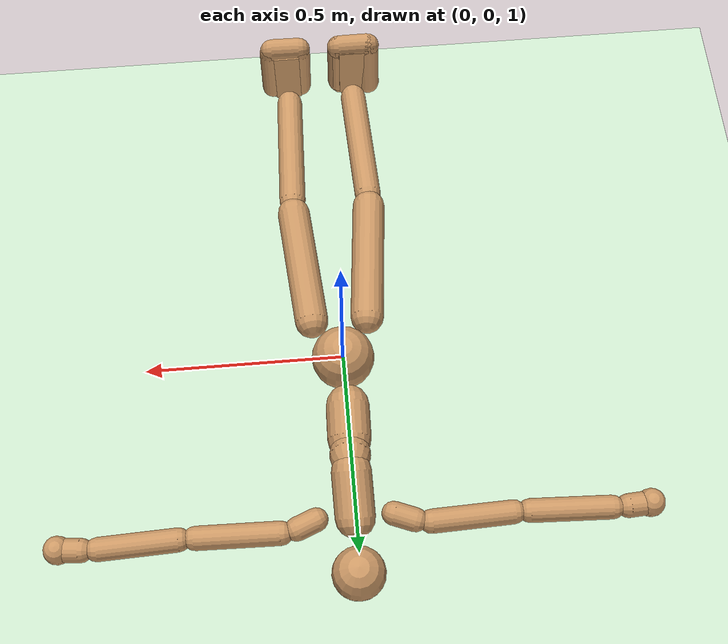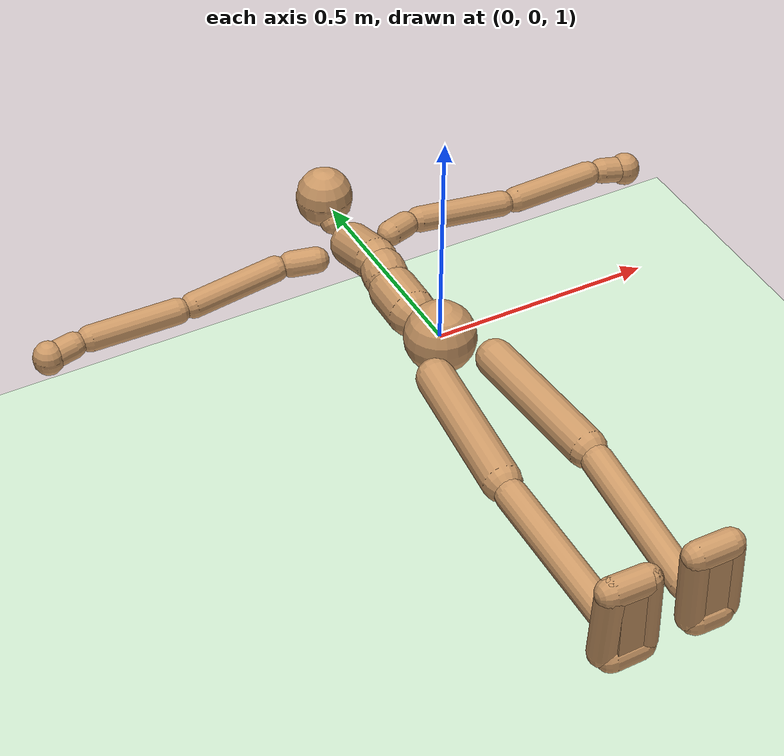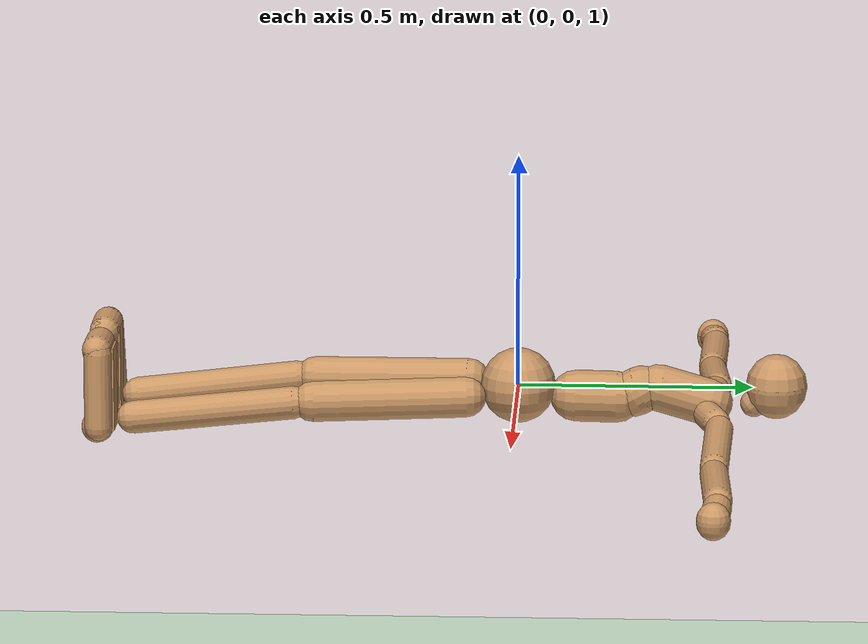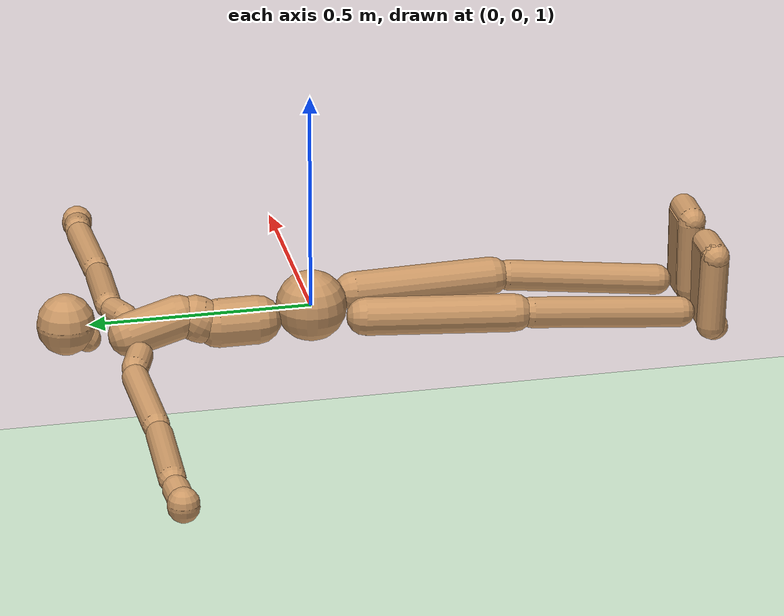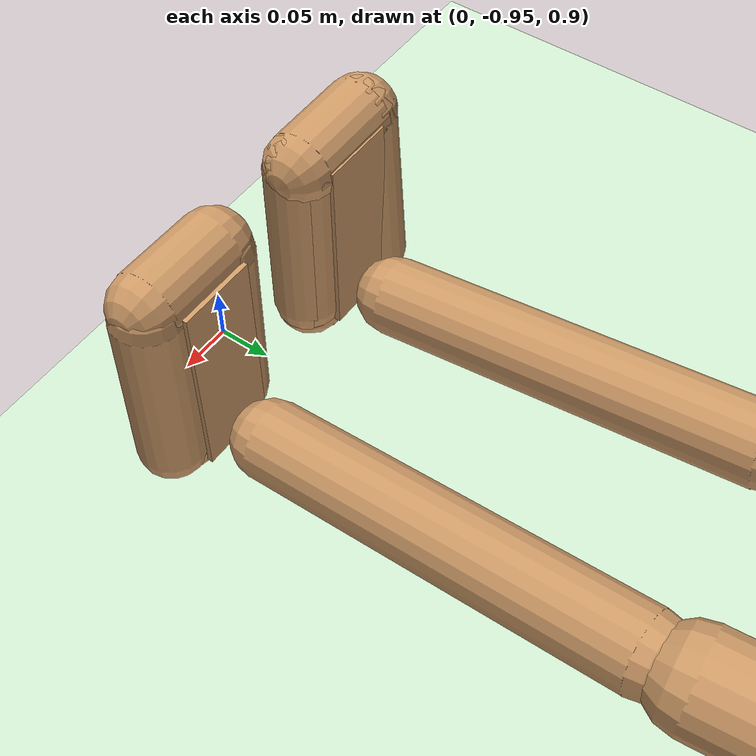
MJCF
<mujoco model="humanoid">
  <compiler angle="degree" inertiafromgeom="true" coordinate="global"/>
  <include file="./common/materials.xml"/>
  <visual>
    <headlight ambient=".4 .4 .4" diffuse=".8 .8 .8" specular="0.1 0.1 0.1"/>
    <map znear=".01"/>
    <quality shadowsize="2048"/>
  </visual>
  <default>
    <joint damping="0.0" armature="0.01" stiffness="0.0" limited="true"/>
    <geom conaffinity="7" condim="1" contype="7" margin="0.001" material="self" rgba="0.8 0.6 .4 1"/>
  </default>
  <statistic extent="3" center="0 0 1"/>
  <option timestep="0.00222222222">
    <flag contact="disable"/>
  </option>
  <size njmax="1000"/>
  <asset>
    <texture type="skybox" file="./common/sky1.png" gridsize="3 4" gridlayout=".U..LFRB.D.." width="8192" height="8192"/>
    <texture builtin="flat" height="1278" mark="cross" markrgb="1 1 1" name="texgeom" random="0.01" rgb1=".8 .6 .4" rgb2=".8 .6 .4" type="cube" width="127"/>
    <mesh file="./geom/Pelvis.stl"/>
    <mesh file="./geom/L_Hip.stl"/>
    <mesh file="./geom/R_Hip.stl"/>
    <mesh file="./geom/Torso.stl"/>
    <mesh file="./geom/L_Knee.stl"/>
    <mesh file="./geom/R_Knee.stl"/>
    <mesh file="./geom/Spine.stl"/>
    <mesh file="./geom/L_Ankle.stl"/>
    <mesh file="./geom/R_Ankle.stl"/>
    <mesh file="./geom/Chest.stl"/>
    <mesh file="./geom/L_Toe.stl"/>
    <mesh file="./geom/R_Toe.stl"/>
    <mesh file="./geom/Neck.stl"/>
    <mesh file="./geom/L_Thorax.stl"/>
    <mesh file="./geom/R_Thorax.stl"/>
    <mesh file="./geom/Head.stl"/>
    <mesh file="./geom/L_Shoulder.stl"/>
    <mesh file="./geom/R_Shoulder.stl"/>
    <mesh file="./geom/L_Elbow.stl"/>
    <mesh file="./geom/R_Elbow.stl"/>
    <mesh file="./geom/L_Wrist.stl"/>
    <mesh file="./geom/R_Wrist.stl"/>
    <mesh file="./geom/L_Hand.stl"/>
    <mesh file="./geom/R_Hand.stl"/>
  </asset>
  <worldbody>
    <light cutoff="100" diffuse="1 1 1" dir="-0 0 -1.3" directional="true" exponent="1" pos="0 0 1.3" specular=".1 .1 .1"/>
    <geom condim="3" friction="1. .1 .1" material="grid" name="floor" pos="0 0 0" rgba=".8 .9 .8 1" size="100 100 .2" type="plane"/>
    <body name="Pelvis" pos="0.0000 0.0000 1.0000" user="-0.0001 -0.0251 0.9883">
      <joint name="Pelvis" pos="0.0000 0.0000 1.0000" limited="false" type="free" armature="0" damping="0" stiffness="0"/>
      <geom size="0.0800" type="sphere" pos="0.0000 0.0000 1.0000"/>
      <body name="L_Hip" pos="0.0714 -0.0896 0.9920" user="0.1020 -0.4538 0.9853">
        <joint name="L_Hip_z" type="hinge" pos="0.0714 -0.0896 0.9920" axis="0.0000 0.0000 1.0000" range="-180.0000 180.0000"/>
        <joint name="L_Hip_y" type="hinge" pos="0.0714 -0.0896 0.9920" axis="0.0000 1.0000 0.0000" range="-180.0000 180.0000"/>
        <joint name="L_Hip_x" type="hinge" pos="0.0714 -0.0896 0.9920" axis="1.0000 0.0000 0.0000" range="-180.0000 180.0000"/>
        <geom size="0.0430" type="capsule" fromto="0.0730 -0.1095 0.9916 0.1004 -0.4339 0.9856" contype="0" conaffinity="1"/>
        <body name="L_Knee" pos="0.1020 -0.4538 0.9853" user="0.0905 -0.8371 0.9418">
          <joint name="L_Knee_z" type="hinge" pos="0.1020 -0.4538 0.9853" axis="0.0000 0.0000 1.0000" range="-180.0000 180.0000"/>
          <joint name="L_Knee_y" type="hinge" pos="0.1020 -0.4538 0.9853" axis="0.0000 1.0000 0.0000" range="-180.0000 180.0000"/>
          <joint name="L_Knee_x" type="hinge" pos="0.1020 -0.4538 0.9853" axis="1.0000 0.0000 0.0000" range="-180.0000 180.0000"/>
          <geom size="0.0350" type="capsule" fromto="0.1014 -0.4737 0.9830 0.0911 -0.8173 0.9440" contype="0" conaffinity="1"/>
          <body name="L_Ankle" pos="0.0905 -0.8371 0.9418" user="0.1138 -0.8918 1.0561">
            <joint name="L_Ankle_z" type="hinge" pos="0.0905 -0.8371 0.9418" axis="0.0000 0.0000 1.0000" range="-180.0000 180.0000"/>
            <joint name="L_Ankle_y" type="hinge" pos="0.0905 -0.8371 0.9418" axis="0.0000 1.0000 0.0000" range="-180.0000 180.0000"/>
            <joint name="L_Ankle_x" type="hinge" pos="0.0905 -0.8371 0.9418" axis="1.0000 0.0000 0.0000" range="-180.0000 180.0000"/>
            <geom pos="0.0905 -0.8851 1.0118" size="0.0350 0.0900 0.0300" quat="0.7071 -0.7071 -0.0000 -0.0000" type="box" contype="0" conaffinity="1"/>
            <body name="L_Toe" pos="0.1138 -0.8918 1.0561" user="0.1138 -0.8918 1.0561">
              <joint name="L_Toe_z" type="hinge" pos="0.1138 -0.8918 1.0561" axis="0.0000 0.0000 1.0000" range="-180.0000 180.0000"/>
              <joint name="L_Toe_y" type="hinge" pos="0.1138 -0.8918 1.0561" axis="0.0000 1.0000 0.0000" range="-180.0000 180.0000"/>
              <joint name="L_Toe_x" type="hinge" pos="0.1138 -0.8918 1.0561" axis="1.0000 0.0000 0.0000" range="-180.0000 180.0000"/>
              <geom size="0.0310" type="capsule" fromto="0.0541 -0.8898 1.0996 0.1295 -0.8898 1.1006" contype="0" conaffinity="1"/>
            </body>
            <body name="L_Toe_1" pos="0.1138 -0.8918 1.0561" user="0.1138 -0.8918 1.0561">
              <joint name="L_Toe_1_z" type="hinge" pos="0.1138 -0.8918 1.0561" axis="0.0000 0.0000 1.0000" range="-180.0000 180.0000"/>
              <joint name="L_Toe_1_y" type="hinge" pos="0.1138 -0.8918 1.0561" axis="0.0000 1.0000 0.0000" range="-180.0000 180.0000"/>
              <joint name="L_Toe_1_x" type="hinge" pos="0.1138 -0.8918 1.0561" axis="1.0000 0.0000 0.0000" range="-180.0000 180.0000"/>
              <geom size="0.0300" type="capsule" fromto="0.1327 -0.8878 1.0945 0.1349 -0.8878 0.9337" contype="0" conaffinity="1"/>
            </body>
            <body name="L_Toe_2" pos="0.1138 -0.8918 1.0561" user="0.1138 -0.8918 1.0561">
              <joint name="L_Toe_2_z" type="hinge" pos="0.1138 -0.8918 1.0561" axis="0.0000 0.0000 1.0000" range="-180.0000 180.0000"/>
              <joint name="L_Toe_2_y" type="hinge" pos="0.1138 -0.8918 1.0561" axis="0.0000 1.0000 0.0000" range="-180.0000 180.0000"/>
              <joint name="L_Toe_2_x" type="hinge" pos="0.1138 -0.8918 1.0561" axis="1.0000 0.0000 0.0000" range="-180.0000 180.0000"/>
              <geom size="0.0310" type="capsule" fromto="0.0572 -0.8878 0.9337 0.0544 -0.8878 1.0945" contype="0" conaffinity="1"/>
            </body>
            <body name="L_Toe_3" pos="0.1138 -0.8918 1.0561" user="0.1138 -0.8918 1.0561">
              <joint name="L_Toe_3_z" type="hinge" pos="0.1138 -0.8918 1.0561" axis="0.0000 0.0000 1.0000" range="-180.0000 180.0000"/>
              <joint name="L_Toe_3_y" type="hinge" pos="0.1138 -0.8918 1.0561" axis="0.0000 1.0000 0.0000" range="-180.0000 180.0000"/>
              <joint name="L_Toe_3_x" type="hinge" pos="0.1138 -0.8918 1.0561" axis="1.0000 0.0000 0.0000" range="-180.0000 180.0000"/>
              <geom size="0.0340" type="capsule" fromto="0.1172 -0.8918 0.9287 0.0664 -0.8918 0.9275" contype="0" conaffinity="1"/>
            </body>
          </body>
        </body>
      </body>
      <body name="R_Hip" pos="-0.0690 -0.0890 0.9952" user="-0.1052 -0.4596 0.9860">
        <joint name="R_Hip_z" type="hinge" pos="-0.0690 -0.0890 0.9952" axis="0.0000 0.0000 1.0000" range="-180.0000 180.0000"/>
        <joint name="R_Hip_y" type="hinge" pos="-0.0690 -0.0890 0.9952" axis="0.0000 1.0000 0.0000" range="-180.0000 180.0000"/>
        <joint name="R_Hip_x" type="hinge" pos="-0.0690 -0.0890 0.9952" axis="1.0000 0.0000 0.0000" range="-180.0000 180.0000"/>
        <geom size="0.0430" type="capsule" fromto="-0.0710 -0.1089 0.9947 -0.1032 -0.4397 0.9865" contype="0" conaffinity="1"/>
        <body name="R_Knee" pos="-0.1052 -0.4596 0.9860" user="-0.0911 -0.8432 0.9441">
          <joint name="R_Knee_z" type="hinge" pos="-0.1052 -0.4596 0.9860" axis="0.0000 0.0000 1.0000" range="-180.0000 180.0000"/>
          <joint name="R_Knee_y" type="hinge" pos="-0.1052 -0.4596 0.9860" axis="0.0000 1.0000 0.0000" range="-180.0000 180.0000"/>
          <joint name="R_Knee_x" type="hinge" pos="-0.1052 -0.4596 0.9860" axis="1.0000 0.0000 0.0000" range="-180.0000 180.0000"/>
          <geom size="0.0350" type="capsule" fromto="-0.1044 -0.4795 0.9838 -0.0919 -0.8234 0.9463" contype="0" conaffinity="1"/>
          <body name="R_Ankle" pos="-0.0911 -0.8432 0.9441" user="-0.1132 -0.8897 1.0620">
            <joint name="R_Ankle_z" type="hinge" pos="-0.0911 -0.8432 0.9441" axis="0.0000 0.0000 1.0000" range="-180.0000 180.0000"/>
            <joint name="R_Ankle_y" type="hinge" pos="-0.0911 -0.8432 0.9441" axis="0.0000 1.0000 0.0000" range="-180.0000 180.0000"/>
            <joint name="R_Ankle_x" type="hinge" pos="-0.0911 -0.8432 0.9441" axis="1.0000 0.0000 0.0000" range="-180.0000 180.0000"/>
            <geom pos="-0.0911 -0.8892 1.0118" size="0.0350 0.0900 0.0300" quat="0.7071 -0.7071 0.0000 0.0000" type="box" contype="0" conaffinity="1"/>
            <body name="R_Toe" pos="-0.1132 -0.8897 1.0620" user="-0.1132 -0.8897 1.0620">
              <joint name="R_Toe_z" type="hinge" pos="-0.1132 -0.8897 1.0620" axis="0.0000 0.0000 1.0000" range="-180.0000 180.0000"/>
              <joint name="R_Toe_y" type="hinge" pos="-0.1132 -0.8897 1.0620" axis="0.0000 1.0000 0.0000" range="-180.0000 180.0000"/>
              <joint name="R_Toe_x" type="hinge" pos="-0.1132 -0.8897 1.0620" axis="1.0000 0.0000 0.0000" range="-180.0000 180.0000"/>
              <geom size="0.0320" type="capsule" fromto="-0.0570 -0.8917 1.0935 -0.1374 -0.8917 1.0945" contype="0" conaffinity="1"/>
            </body>
            <body name="R_Toe_1" pos="-0.1132 -0.8897 1.0620" user="-0.1132 -0.8897 1.0620">
              <joint name="R_Toe_1_z" type="hinge" pos="-0.1132 -0.8897 1.0620" axis="0.0000 0.0000 1.0000" range="-180.0000 180.0000"/>
              <joint name="R_Toe_1_y" type="hinge" pos="-0.1132 -0.8897 1.0620" axis="0.0000 1.0000 0.0000" range="-180.0000 180.0000"/>
              <joint name="R_Toe_1_x" type="hinge" pos="-0.1132 -0.8897 1.0620" axis="1.0000 0.0000 0.0000" range="-180.0000 180.0000"/>
              <geom size="0.0320" type="capsule" fromto="-0.1353 -0.8912 1.0945 -0.1391 -0.8842 0.9295" contype="0" conaffinity="1"/>
            </body>
            <body name="R_Toe_2" pos="-0.1132 -0.8897 1.0620" user="-0.1132 -0.8897 1.0620">
              <joint name="R_Toe_2_z" type="hinge" pos="-0.1132 -0.8897 1.0620" axis="0.0000 0.0000 1.0000" range="-180.0000 180.0000"/>
              <joint name="R_Toe_2_y" type="hinge" pos="-0.1132 -0.8897 1.0620" axis="0.0000 1.0000 0.0000" range="-180.0000 180.0000"/>
              <joint name="R_Toe_2_x" type="hinge" pos="-0.1132 -0.8897 1.0620" axis="1.0000 0.0000 0.0000" range="-180.0000 180.0000"/>
              <geom size="0.0300" type="capsule" fromto="-0.0558 -0.8937 1.0942 -0.0546 -0.8937 0.9338" contype="0" conaffinity="1"/>
            </body>
            <body name="R_Toe_3" pos="-0.1132 -0.8897 1.0620" user="-0.1132 -0.8897 1.0620">
              <joint name="R_Toe_3_z" type="hinge" pos="-0.1132 -0.8897 1.0620" axis="0.0000 0.0000 1.0000" range="-180.0000 180.0000"/>
              <joint name="R_Toe_3_y" type="hinge" pos="-0.1132 -0.8897 1.0620" axis="0.0000 1.0000 0.0000" range="-180.0000 180.0000"/>
              <joint name="R_Toe_3_x" type="hinge" pos="-0.1132 -0.8897 1.0620" axis="1.0000 0.0000 0.0000" range="-180.0000 180.0000"/>
              <geom size="0.0320" type="capsule" fromto="-0.1272 -0.8957 0.9204 -0.0614 -0.8957 0.9236" contype="0" conaffinity="1"/>
            </body>
          </body>
        </body>
      </body>
      <body name="Torso" pos="-0.0025 0.1033 0.9778" user="0.0011 0.2309 0.9761">
        <joint name="Torso_z" type="hinge" pos="-0.0025 0.1033 0.9778" axis="0.0000 0.0000 1.0000" range="-180.0000 180.0000"/>
        <joint name="Torso_y" type="hinge" pos="-0.0025 0.1033 0.9778" axis="0.0000 1.0000 0.0000" range="-180.0000 180.0000"/>
        <joint name="Torso_x" type="hinge" pos="-0.0025 0.1033 0.9778" axis="1.0000 0.0000 0.0000" range="-180.0000 180.0000"/>
        <geom size="0.0550" type="capsule" fromto="-0.0019 0.1232 0.9775 0.0005 0.2109 0.9764" contype="0" conaffinity="1"/>
        <body name="Spine" pos="0.0011 0.2309 0.9761" user="0.0031 0.2800 1.0040">
          <joint name="Spine_z" type="hinge" pos="0.0011 0.2309 0.9761" axis="0.0000 0.0000 1.0000" range="-180.0000 180.0000"/>
          <joint name="Spine_y" type="hinge" pos="0.0011 0.2309 0.9761" axis="0.0000 1.0000 0.0000" range="-180.0000 180.0000"/>
          <joint name="Spine_x" type="hinge" pos="0.0011 0.2309 0.9761" axis="1.0000 0.0000 0.0000" range="-180.0000 180.0000"/>
          <geom size="0.0510" type="capsule" fromto="0.0018 0.2483 0.9860 0.0024 0.2626 0.9941" contype="0" conaffinity="1"/>
          <body name="Chest" pos="0.0031 0.2800 1.0040" user="0.0019 0.4272 0.9612">
            <joint name="Chest_z" type="hinge" pos="0.0031 0.2800 1.0040" axis="0.0000 0.0000 1.0000" range="-180.0000 180.0000"/>
            <joint name="Chest_y" type="hinge" pos="0.0031 0.2800 1.0040" axis="0.0000 1.0000 0.0000" range="-180.0000 180.0000"/>
            <joint name="Chest_x" type="hinge" pos="0.0031 0.2800 1.0040" axis="1.0000 0.0000 0.0000" range="-180.0000 180.0000"/>
            <geom size="0.0500" type="capsule" fromto="0.0029 0.2992 0.9984 0.0020 0.4080 0.9667" contype="0" conaffinity="1"/>
            <body name="Neck" pos="0.0011 0.4882 0.9542" user="0.0047 0.5506 1.0044">
              <joint name="Neck_z" type="hinge" pos="0.0011 0.4882 0.9542" axis="0.0000 0.0000 1.0000" range="-180.0000 180.0000"/>
              <joint name="Neck_y" type="hinge" pos="0.0011 0.4882 0.9542" axis="0.0000 1.0000 0.0000" range="-180.0000 180.0000"/>
              <joint name="Neck_x" type="hinge" pos="0.0011 0.4882 0.9542" axis="1.0000 0.0000 0.0000" range="-180.0000 180.0000"/>
              <geom size="0.0300" type="capsule" fromto="0.0020 0.5038 0.9667 0.0038 0.5350 0.9919" contype="0" conaffinity="1"/>
              <body name="Head" pos="0.0047 0.5506 1.0044" user="0.0047 0.5506 1.0044">
                <joint name="Head_z" type="hinge" pos="0.0047 0.5506 1.0044" axis="0.0000 0.0000 1.0000" range="-180.0000 180.0000"/>
                <joint name="Head_y" type="hinge" pos="0.0047 0.5506 1.0044" axis="0.0000 1.0000 0.0000" range="-180.0000 180.0000"/>
                <joint name="Head_x" type="hinge" pos="0.0047 0.5506 1.0044" axis="1.0000 0.0000 0.0000" range="-180.0000 180.0000"/>
                <geom size="0.0650" type="capsule" fromto="0.0047 0.5506 1.0084 0.0047 0.5506 1.0004" contype="0" conaffinity="1"/>
              </body>
            </body>
            <body name="L_Thorax" pos="0.0784 0.3978 0.9671" user="0.1637 0.4295 0.9598">
              <joint name="L_Thorax_z" type="hinge" pos="0.0784 0.3978 0.9671" axis="0.0000 0.0000 1.0000" range="-180.0000 180.0000"/>
              <joint name="L_Thorax_y" type="hinge" pos="0.0784 0.3978 0.9671" axis="0.0000 1.0000 0.0000" range="-180.0000 180.0000"/>
              <joint name="L_Thorax_x" type="hinge" pos="0.0784 0.3978 0.9671" axis="1.0000 0.0000 0.0000" range="-180.0000 180.0000"/>
              <geom size="0.0300" type="capsule" fromto="0.0971 0.4047 0.9655 0.1450 0.4226 0.9614" contype="0" conaffinity="1"/>
              <body name="L_Shoulder" pos="0.1637 0.4295 0.9598" user="0.4150 0.4175 0.9323">
                <joint name="L_Shoulder_z" type="hinge" pos="0.1637 0.4295 0.9598" axis="0.0000 0.0000 1.0000" range="-180.0000 180.0000"/>
                <joint name="L_Shoulder_y" type="hinge" pos="0.1637 0.4295 0.9598" axis="0.0000 1.0000 0.0000" range="-180.0000 180.0000"/>
                <joint name="L_Shoulder_x" type="hinge" pos="0.1637 0.4295 0.9598" axis="1.0000 0.0000 0.0000" range="-180.0000 180.0000"/>
                <geom size="0.0300" type="capsule" fromto="0.1836 0.4286 0.9576 0.3951 0.4185 0.9345" contype="0" conaffinity="1"/>
                <body name="L_Elbow" pos="0.4150 0.4175 0.9323" user="0.6530 0.4265 0.9323">
                  <joint name="L_Elbow_z" type="hinge" pos="0.4150 0.4175 0.9323" axis="0.0000 0.0000 1.0000" range="-180.0000 180.0000"/>
                  <joint name="L_Elbow_y" type="hinge" pos="0.4150 0.4175 0.9323" axis="0.0000 1.0000 0.0000" range="-180.0000 180.0000"/>
                  <joint name="L_Elbow_x" type="hinge" pos="0.4150 0.4175 0.9323" axis="1.0000 0.0000 0.0000" range="-180.0000 180.0000"/>
                  <geom size="0.0300" type="capsule" fromto="0.4349 0.4183 0.9323 0.6330 0.4258 0.9323" contype="0" conaffinity="1"/>
                  <body name="L_Wrist" pos="0.6530 0.4265 0.9323" user="0.7326 0.4169 0.9191">
                    <joint name="L_Wrist_z" type="hinge" pos="0.6530 0.4265 0.9323" axis="0.0000 0.0000 1.0000" range="-180.0000 180.0000"/>
                    <joint name="L_Wrist_y" type="hinge" pos="0.6530 0.4265 0.9323" axis="0.0000 1.0000 0.0000" range="-180.0000 180.0000"/>
                    <joint name="L_Wrist_x" type="hinge" pos="0.6530 0.4265 0.9323" axis="1.0000 0.0000 0.0000" range="-180.0000 180.0000"/>
                    <geom size="0.0300" type="capsule" fromto="0.6726 0.4242 0.9291 0.7131 0.4192 0.9224" contype="0" conaffinity="1"/>
                    <body name="L_Hand" pos="0.7326 0.4169 0.9191" user="0.7326 0.4169 0.9191">
                      <joint name="L_Hand_z" type="hinge" pos="0.7326 0.4169 0.9191" axis="0.0000 0.0000 1.0000" range="-180.0000 180.0000"/>
                      <joint name="L_Hand_y" type="hinge" pos="0.7326 0.4169 0.9191" axis="0.0000 1.0000 0.0000" range="-180.0000 180.0000"/>
                      <joint name="L_Hand_x" type="hinge" pos="0.7326 0.4169 0.9191" axis="1.0000 0.0000 0.0000" range="-180.0000 180.0000"/>
                      <geom size="0.0350" type="capsule" fromto="0.7326 0.4169 0.9231 0.7326 0.4169 0.9151" contype="0" conaffinity="1"/>
                    </body>
                  </body>
                </body>
              </body>
            </body>
            <body name="R_Thorax" pos="-0.0739 0.3956 0.9622" user="-0.1631 0.4284 0.9524">
              <joint name="R_Thorax_z" type="hinge" pos="-0.0739 0.3956 0.9622" axis="0.0000 0.0000 1.0000" range="-180.0000 180.0000"/>
              <joint name="R_Thorax_y" type="hinge" pos="-0.0739 0.3956 0.9622" axis="0.0000 1.0000 0.0000" range="-180.0000 180.0000"/>
              <joint name="R_Thorax_x" type="hinge" pos="-0.0739 0.3956 0.9622" axis="1.0000 0.0000 0.0000" range="-180.0000 180.0000"/>
              <geom size="0.0300" type="capsule" fromto="-0.0926 0.4025 0.9601 -0.1445 0.4215 0.9544" contype="0" conaffinity="1"/>
              <body name="R_Shoulder" pos="-0.1631 0.4284 0.9524" user="-0.4091 0.4152 0.9322">
                <joint name="R_Shoulder_z" type="hinge" pos="-0.1631 0.4284 0.9524" axis="0.0000 0.0000 1.0000" range="-180.0000 180.0000"/>
                <joint name="R_Shoulder_y" type="hinge" pos="-0.1631 0.4284 0.9524" axis="0.0000 1.0000 0.0000" range="-180.0000 180.0000"/>
                <joint name="R_Shoulder_x" type="hinge" pos="-0.1631 0.4284 0.9524" axis="1.0000 0.0000 0.0000" range="-180.0000 180.0000"/>
                <geom size="0.0300" type="capsule" fromto="-0.1830 0.4273 0.9507 -0.3892 0.4163 0.9338" contype="0" conaffinity="1"/>
                <body name="R_Elbow" pos="-0.4091 0.4152 0.9322" user="-0.6543 0.4238 0.9287">
                  <joint name="R_Elbow_z" type="hinge" pos="-0.4091 0.4152 0.9322" axis="0.0000 0.0000 1.0000" range="-180.0000 180.0000"/>
                  <joint name="R_Elbow_y" type="hinge" pos="-0.4091 0.4152 0.9322" axis="0.0000 1.0000 0.0000" range="-180.0000 180.0000"/>
                  <joint name="R_Elbow_x" type="hinge" pos="-0.4091 0.4152 0.9322" axis="1.0000 0.0000 0.0000" range="-180.0000 180.0000"/>
                  <geom size="0.0300" type="capsule" fromto="-0.4291 0.4159 0.9319 -0.6343 0.4231 0.9290" contype="0" conaffinity="1"/>
                  <body name="R_Wrist" pos="-0.6543 0.4238 0.9287" user="-0.7347 0.4166 0.9182">
                    <joint name="R_Wrist_z" type="hinge" pos="-0.6543 0.4238 0.9287" axis="0.0000 0.0000 1.0000" range="-180.0000 180.0000"/>
                    <joint name="R_Wrist_y" type="hinge" pos="-0.6543 0.4238 0.9287" axis="0.0000 1.0000 0.0000" range="-180.0000 180.0000"/>
                    <joint name="R_Wrist_x" type="hinge" pos="-0.6543 0.4238 0.9287" axis="1.0000 0.0000 0.0000" range="-180.0000 180.0000"/>
                    <geom size="0.0300" type="capsule" fromto="-0.6741 0.4221 0.9261 -0.7149 0.4184 0.9208" contype="0" conaffinity="1"/>
                    <body name="R_Hand" pos="-0.7347 0.4166 0.9182" user="-0.7347 0.4166 0.9182">
                      <joint name="R_Hand_z" type="hinge" pos="-0.7347 0.4166 0.9182" axis="0.0000 0.0000 1.0000" range="-180.0000 180.0000"/>
                      <joint name="R_Hand_y" type="hinge" pos="-0.7347 0.4166 0.9182" axis="0.0000 1.0000 0.0000" range="-180.0000 180.0000"/>
                      <joint name="R_Hand_x" type="hinge" pos="-0.7347 0.4166 0.9182" axis="1.0000 0.0000 0.0000" range="-180.0000 180.0000"/>
                      <geom size="0.0350" type="capsule" fromto="-0.7347 0.4166 0.9222 -0.7347 0.4166 0.9142" contype="0" conaffinity="1"/>
                    </body>
                  </body>
                </body>
              </body>
            </body>
          </body>
        </body>
      </body>
    </body>
    <body name="1_Pelvis" pos="0.0000 0.0000 1.0000" user="-0.0001 -0.0251 0.9883">
      <joint name="1_Pelvis" pos="0.0000 0.0000 1.0000" limited="false" type="free" armature="0" damping="0" stiffness="0"/>
      <geom size="0.0800" type="sphere" pos="0.0000 0.0000 1.0000"/>
      <body name="1_L_Hip" pos="0.0714 -0.0896 0.9920" user="0.1020 -0.4538 0.9853">
        <joint name="1_L_Hip_z" type="hinge" pos="0.0714 -0.0896 0.9920" axis="0.0000 0.0000 1.0000" range="-180.0000 180.0000"/>
        <joint name="1_L_Hip_y" type="hinge" pos="0.0714 -0.0896 0.9920" axis="0.0000 1.0000 0.0000" range="-180.0000 180.0000"/>
        <joint name="1_L_Hip_x" type="hinge" pos="0.0714 -0.0896 0.9920" axis="1.0000 0.0000 0.0000" range="-180.0000 180.0000"/>
        <geom size="0.0430" type="capsule" fromto="0.0730 -0.1095 0.9916 0.1004 -0.4339 0.9856"/>
        <body name="1_L_Knee" pos="0.1020 -0.4538 0.9853" user="0.0905 -0.8371 0.9418">
          <joint name="1_L_Knee_z" type="hinge" pos="0.1020 -0.4538 0.9853" axis="0.0000 0.0000 1.0000" range="-180.0000 180.0000"/>
          <joint name="1_L_Knee_y" type="hinge" pos="0.1020 -0.4538 0.9853" axis="0.0000 1.0000 0.0000" range="-180.0000 180.0000"/>
          <joint name="1_L_Knee_x" type="hinge" pos="0.1020 -0.4538 0.9853" axis="1.0000 0.0000 0.0000" range="-180.0000 180.0000"/>
          <geom size="0.0350" type="capsule" fromto="0.1014 -0.4737 0.9830 0.0911 -0.8173 0.9440"/>
          <body name="1_L_Ankle" pos="0.0905 -0.8371 0.9418" user="0.1138 -0.8918 1.0561">
            <joint name="1_L_Ankle_z" type="hinge" pos="0.0905 -0.8371 0.9418" axis="0.0000 0.0000 1.0000" range="-180.0000 180.0000"/>
            <joint name="1_L_Ankle_y" type="hinge" pos="0.0905 -0.8371 0.9418" axis="0.0000 1.0000 0.0000" range="-180.0000 180.0000"/>
            <joint name="1_L_Ankle_x" type="hinge" pos="0.0905 -0.8371 0.9418" axis="1.0000 0.0000 0.0000" range="-180.0000 180.0000"/>
            <geom pos="0.0905 -0.8851 1.0118" size="0.0350 0.0900 0.0300" quat="0.7071 -0.7071 -0.0000 -0.0000" type="box"/>
            <body name="1_L_Toe" pos="0.1138 -0.8918 1.0561" user="0.1138 -0.8918 1.0561">
              <joint name="1_L_Toe_z" type="hinge" pos="0.1138 -0.8918 1.0561" axis="0.0000 0.0000 1.0000" range="-180.0000 180.0000"/>
              <joint name="1_L_Toe_y" type="hinge" pos="0.1138 -0.8918 1.0561" axis="0.0000 1.0000 0.0000" range="-180.0000 180.0000"/>
              <joint name="1_L_Toe_x" type="hinge" pos="0.1138 -0.8918 1.0561" axis="1.0000 0.0000 0.0000" range="-180.0000 180.0000"/>
              <geom size="0.0280" type="capsule" fromto="0.0541 -0.8878 1.0996 0.1295 -0.8878 1.1006"/>
            </body>
            <body name="1_L_Toe_1" pos="0.1138 -0.8918 1.0561" user="0.1138 -0.8918 1.0561">
              <joint name="1_L_Toe_1_z" type="hinge" pos="0.1138 -0.8918 1.0561" axis="0.0000 0.0000 1.0000" range="-180.0000 180.0000"/>
              <joint name="1_L_Toe_1_y" type="hinge" pos="0.1138 -0.8918 1.0561" axis="0.0000 1.0000 0.0000" range="-180.0000 180.0000"/>
              <joint name="1_L_Toe_1_x" type="hinge" pos="0.1138 -0.8918 1.0561" axis="1.0000 0.0000 0.0000" range="-180.0000 180.0000"/>
              <geom size="0.0270" type="capsule" fromto="0.1327 -0.8858 1.0945 0.1349 -0.8858 0.9337"/>
            </body>
            <body name="1_L_Toe_2" pos="0.1138 -0.8918 1.0561" user="0.1138 -0.8918 1.0561">
              <joint name="1_L_Toe_2_z" type="hinge" pos="0.1138 -0.8918 1.0561" axis="0.0000 0.0000 1.0000" range="-180.0000 180.0000"/>
              <joint name="1_L_Toe_2_y" type="hinge" pos="0.1138 -0.8918 1.0561" axis="0.0000 1.0000 0.0000" range="-180.0000 180.0000"/>
              <joint name="1_L_Toe_2_x" type="hinge" pos="0.1138 -0.8918 1.0561" axis="1.0000 0.0000 0.0000" range="-180.0000 180.0000"/>
              <geom size="0.0280" type="capsule" fromto="0.0572 -0.8858 0.9337 0.0544 -0.8858 1.0945"/>
            </body>
            <body name="1_L_Toe_3" pos="0.1138 -0.8918 1.0561" user="0.1138 -0.8918 1.0561">
              <joint name="1_L_Toe_3_z" type="hinge" pos="0.1138 -0.8918 1.0561" axis="0.0000 0.0000 1.0000" range="-180.0000 180.0000"/>
              <joint name="1_L_Toe_3_y" type="hinge" pos="0.1138 -0.8918 1.0561" axis="0.0000 1.0000 0.0000" range="-180.0000 180.0000"/>
              <joint name="1_L_Toe_3_x" type="hinge" pos="0.1138 -0.8918 1.0561" axis="1.0000 0.0000 0.0000" range="-180.0000 180.0000"/>
              <geom size="0.0270" type="capsule" fromto="0.1172 -0.8878 0.9287 0.0664 -0.8878 0.9275"/>
            </body>
          </body>
        </body>
      </body>
      <body name="1_R_Hip" pos="-0.0690 -0.0890 0.9952" user="-0.1052 -0.4596 0.9860">
        <joint name="1_R_Hip_z" type="hinge" pos="-0.0690 -0.0890 0.9952" axis="0.0000 0.0000 1.0000" range="-180.0000 180.0000"/>
        <joint name="1_R_Hip_y" type="hinge" pos="-0.0690 -0.0890 0.9952" axis="0.0000 1.0000 0.0000" range="-180.0000 180.0000"/>
        <joint name="1_R_Hip_x" type="hinge" pos="-0.0690 -0.0890 0.9952" axis="1.0000 0.0000 0.0000" range="-180.0000 180.0000"/>
        <geom size="0.0430" type="capsule" fromto="-0.0710 -0.1089 0.9947 -0.1032 -0.4397 0.9865"/>
        <body name="1_R_Knee" pos="-0.1052 -0.4596 0.9860" user="-0.0911 -0.8432 0.9441">
          <joint name="1_R_Knee_z" type="hinge" pos="-0.1052 -0.4596 0.9860" axis="0.0000 0.0000 1.0000" range="-180.0000 180.0000"/>
          <joint name="1_R_Knee_y" type="hinge" pos="-0.1052 -0.4596 0.9860" axis="0.0000 1.0000 0.0000" range="-180.0000 180.0000"/>
          <joint name="1_R_Knee_x" type="hinge" pos="-0.1052 -0.4596 0.9860" axis="1.0000 0.0000 0.0000" range="-180.0000 180.0000"/>
          <geom size="0.0350" type="capsule" fromto="-0.1044 -0.4795 0.9838 -0.0919 -0.8234 0.9463"/>
          <body name="1_R_Ankle" pos="-0.0911 -0.8432 0.9441" user="-0.1132 -0.8897 1.0620">
            <joint name="1_R_Ankle_z" type="hinge" pos="-0.0911 -0.8432 0.9441" axis="0.0000 0.0000 1.0000" range="-180.0000 180.0000"/>
            <joint name="1_R_Ankle_y" type="hinge" pos="-0.0911 -0.8432 0.9441" axis="0.0000 1.0000 0.0000" range="-180.0000 180.0000"/>
            <joint name="1_R_Ankle_x" type="hinge" pos="-0.0911 -0.8432 0.9441" axis="1.0000 0.0000 0.0000" range="-180.0000 180.0000"/>
            <geom pos="-0.0911 -0.8892 1.0118" size="0.0350 0.0900 0.0300" quat="0.7071 -0.7071 0.0000 0.0000" type="box"/>
            <body name="1_R_Toe" pos="-0.1132 -0.8897 1.0620" user="-0.1132 -0.8897 1.0620">
              <joint name="1_R_Toe_z" type="hinge" pos="-0.1132 -0.8897 1.0620" axis="0.0000 0.0000 1.0000" range="-180.0000 180.0000"/>
              <joint name="1_R_Toe_y" type="hinge" pos="-0.1132 -0.8897 1.0620" axis="0.0000 1.0000 0.0000" range="-180.0000 180.0000"/>
              <joint name="1_R_Toe_x" type="hinge" pos="-0.1132 -0.8897 1.0620" axis="1.0000 0.0000 0.0000" range="-180.0000 180.0000"/>
              <geom size="0.0300" type="capsule" fromto="-0.0570 -0.8897 1.0935 -0.1374 -0.8897 1.0945"/>
            </body>
            <body name="1_R_Toe_1" pos="-0.1132 -0.8897 1.0620" user="-0.1132 -0.8897 1.0620">
              <joint name="1_R_Toe_1_z" type="hinge" pos="-0.1132 -0.8897 1.0620" axis="0.0000 0.0000 1.0000" range="-180.0000 180.0000"/>
              <joint name="1_R_Toe_1_y" type="hinge" pos="-0.1132 -0.8897 1.0620" axis="0.0000 1.0000 0.0000" range="-180.0000 180.0000"/>
              <joint name="1_R_Toe_1_x" type="hinge" pos="-0.1132 -0.8897 1.0620" axis="1.0000 0.0000 0.0000" range="-180.0000 180.0000"/>
              <geom size="0.0290" type="capsule" fromto="-0.1353 -0.8912 1.0945 -0.1391 -0.8842 0.9295"/>
            </body>
            <body name="1_R_Toe_2" pos="-0.1132 -0.8897 1.0620" user="-0.1132 -0.8897 1.0620">
              <joint name="1_R_Toe_2_z" type="hinge" pos="-0.1132 -0.8897 1.0620" axis="0.0000 0.0000 1.0000" range="-180.0000 180.0000"/>
              <joint name="1_R_Toe_2_y" type="hinge" pos="-0.1132 -0.8897 1.0620" axis="0.0000 1.0000 0.0000" range="-180.0000 180.0000"/>
              <joint name="1_R_Toe_2_x" type="hinge" pos="-0.1132 -0.8897 1.0620" axis="1.0000 0.0000 0.0000" range="-180.0000 180.0000"/>
              <geom size="0.0270" type="capsule" fromto="-0.0558 -0.8897 1.0942 -0.0546 -0.8897 0.9338"/>
            </body>
            <body name="1_R_Toe_3" pos="-0.1132 -0.8897 1.0620" user="-0.1132 -0.8897 1.0620">
              <joint name="1_R_Toe_3_z" type="hinge" pos="-0.1132 -0.8897 1.0620" axis="0.0000 0.0000 1.0000" range="-180.0000 180.0000"/>
              <joint name="1_R_Toe_3_y" type="hinge" pos="-0.1132 -0.8897 1.0620" axis="0.0000 1.0000 0.0000" range="-180.0000 180.0000"/>
              <joint name="1_R_Toe_3_x" type="hinge" pos="-0.1132 -0.8897 1.0620" axis="1.0000 0.0000 0.0000" range="-180.0000 180.0000"/>
              <geom size="0.0270" type="capsule" fromto="-0.1272 -0.8917 0.9204 -0.0614 -0.8917 0.9236"/>
            </body>
          </body>
        </body>
      </body>
      <body name="1_Torso" pos="-0.0025 0.1033 0.9778" user="0.0011 0.2309 0.9761">
        <joint name="1_Torso_z" type="hinge" pos="-0.0025 0.1033 0.9778" axis="0.0000 0.0000 1.0000" range="-180.0000 180.0000"/>
        <joint name="1_Torso_y" type="hinge" pos="-0.0025 0.1033 0.9778" axis="0.0000 1.0000 0.0000" range="-180.0000 180.0000"/>
        <joint name="1_Torso_x" type="hinge" pos="-0.0025 0.1033 0.9778" axis="1.0000 0.0000 0.0000" range="-180.0000 180.0000"/>
        <geom size="0.0550" type="capsule" fromto="-0.0019 0.1232 0.9775 0.0005 0.2109 0.9764"/>
        <body name="1_Spine" pos="0.0011 0.2309 0.9761" user="0.0031 0.2800 1.0040">
          <joint name="1_Spine_z" type="hinge" pos="0.0011 0.2309 0.9761" axis="0.0000 0.0000 1.0000" range="-180.0000 180.0000"/>
          <joint name="1_Spine_y" type="hinge" pos="0.0011 0.2309 0.9761" axis="0.0000 1.0000 0.0000" range="-180.0000 180.0000"/>
          <joint name="1_Spine_x" type="hinge" pos="0.0011 0.2309 0.9761" axis="1.0000 0.0000 0.0000" range="-180.0000 180.0000"/>
          <geom size="0.0510" type="capsule" fromto="0.0018 0.2483 0.9860 0.0024 0.2626 0.9941"/>
          <body name="1_Chest" pos="0.0031 0.2800 1.0040" user="0.0019 0.4272 0.9612">
            <joint name="1_Chest_z" type="hinge" pos="0.0031 0.2800 1.0040" axis="0.0000 0.0000 1.0000" range="-180.0000 180.0000"/>
            <joint name="1_Chest_y" type="hinge" pos="0.0031 0.2800 1.0040" axis="0.0000 1.0000 0.0000" range="-180.0000 180.0000"/>
            <joint name="1_Chest_x" type="hinge" pos="0.0031 0.2800 1.0040" axis="1.0000 0.0000 0.0000" range="-180.0000 180.0000"/>
            <geom size="0.0500" type="capsule" fromto="0.0029 0.2992 0.9984 0.0020 0.4080 0.9667"/>
            <body name="1_Neck" pos="0.0011 0.4882 0.9542" user="0.0047 0.5506 1.0044">
              <joint name="1_Neck_z" type="hinge" pos="0.0011 0.4882 0.9542" axis="0.0000 0.0000 1.0000" range="-180.0000 180.0000"/>
              <joint name="1_Neck_y" type="hinge" pos="0.0011 0.4882 0.9542" axis="0.0000 1.0000 0.0000" range="-180.0000 180.0000"/>
              <joint name="1_Neck_x" type="hinge" pos="0.0011 0.4882 0.9542" axis="1.0000 0.0000 0.0000" range="-180.0000 180.0000"/>
              <geom size="0.0300" type="capsule" fromto="0.0020 0.5038 0.9667 0.0038 0.5350 0.9919"/>
              <body name="1_Head" pos="0.0047 0.5506 1.0044" user="0.0047 0.5506 1.0044">
                <joint name="1_Head_z" type="hinge" pos="0.0047 0.5506 1.0044" axis="0.0000 0.0000 1.0000" range="-180.0000 180.0000"/>
                <joint name="1_Head_y" type="hinge" pos="0.0047 0.5506 1.0044" axis="0.0000 1.0000 0.0000" range="-180.0000 180.0000"/>
                <joint name="1_Head_x" type="hinge" pos="0.0047 0.5506 1.0044" axis="1.0000 0.0000 0.0000" range="-180.0000 180.0000"/>
                <geom size="0.0650" type="capsule" fromto="0.0047 0.5506 1.0084 0.0047 0.5506 1.0004"/>
              </body>
            </body>
            <body name="1_L_Thorax" pos="0.0784 0.3978 0.9671" user="0.1637 0.4295 0.9598">
              <joint name="1_L_Thorax_z" type="hinge" pos="0.0784 0.3978 0.9671" axis="0.0000 0.0000 1.0000" range="-180.0000 180.0000"/>
              <joint name="1_L_Thorax_y" type="hinge" pos="0.0784 0.3978 0.9671" axis="0.0000 1.0000 0.0000" range="-180.0000 180.0000"/>
              <joint name="1_L_Thorax_x" type="hinge" pos="0.0784 0.3978 0.9671" axis="1.0000 0.0000 0.0000" range="-180.0000 180.0000"/>
              <geom size="0.0300" type="capsule" fromto="0.0971 0.4047 0.9655 0.1450 0.4226 0.9614"/>
              <body name="1_L_Shoulder" pos="0.1637 0.4295 0.9598" user="0.4150 0.4175 0.9323">
                <joint name="1_L_Shoulder_z" type="hinge" pos="0.1637 0.4295 0.9598" axis="0.0000 0.0000 1.0000" range="-180.0000 180.0000"/>
                <joint name="1_L_Shoulder_y" type="hinge" pos="0.1637 0.4295 0.9598" axis="0.0000 1.0000 0.0000" range="-180.0000 180.0000"/>
                <joint name="1_L_Shoulder_x" type="hinge" pos="0.1637 0.4295 0.9598" axis="1.0000 0.0000 0.0000" range="-180.0000 180.0000"/>
                <geom size="0.0300" type="capsule" fromto="0.1836 0.4286 0.9576 0.3951 0.4185 0.9345"/>
                <body name="1_L_Elbow" pos="0.4150 0.4175 0.9323" user="0.6530 0.4265 0.9323">
                  <joint name="1_L_Elbow_z" type="hinge" pos="0.4150 0.4175 0.9323" axis="0.0000 0.0000 1.0000" range="-180.0000 180.0000"/>
                  <joint name="1_L_Elbow_y" type="hinge" pos="0.4150 0.4175 0.9323" axis="0.0000 1.0000 0.0000" range="-180.0000 180.0000"/>
                  <joint name="1_L_Elbow_x" type="hinge" pos="0.4150 0.4175 0.9323" axis="1.0000 0.0000 0.0000" range="-180.0000 180.0000"/>
                  <geom size="0.0300" type="capsule" fromto="0.4349 0.4183 0.9323 0.6330 0.4258 0.9323"/>
                  <body name="1_L_Wrist" pos="0.6530 0.4265 0.9323" user="0.7326 0.4169 0.9191">
                    <joint name="1_L_Wrist_z" type="hinge" pos="0.6530 0.4265 0.9323" axis="0.0000 0.0000 1.0000" range="-180.0000 180.0000"/>
                    <joint name="1_L_Wrist_y" type="hinge" pos="0.6530 0.4265 0.9323" axis="0.0000 1.0000 0.0000" range="-180.0000 180.0000"/>
                    <joint name="1_L_Wrist_x" type="hinge" pos="0.6530 0.4265 0.9323" axis="1.0000 0.0000 0.0000" range="-180.0000 180.0000"/>
                    <geom size="0.0300" type="capsule" fromto="0.6726 0.4242 0.9291 0.7131 0.4192 0.9224"/>
                    <body name="1_L_Hand" pos="0.7326 0.4169 0.9191" user="0.7326 0.4169 0.9191">
                      <joint name="1_L_Hand_z" type="hinge" pos="0.7326 0.4169 0.9191" axis="0.0000 0.0000 1.0000" range="-180.0000 180.0000"/>
                      <joint name="1_L_Hand_y" type="hinge" pos="0.7326 0.4169 0.9191" axis="0.0000 1.0000 0.0000" range="-180.0000 180.0000"/>
                      <joint name="1_L_Hand_x" type="hinge" pos="0.7326 0.4169 0.9191" axis="1.0000 0.0000 0.0000" range="-180.0000 180.0000"/>
                      <geom size="0.0350" type="capsule" fromto="0.7326 0.4169 0.9231 0.7326 0.4169 0.9151"/>
                    </body>
                  </body>
                </body>
              </body>
            </body>
            <body name="1_R_Thorax" pos="-0.0739 0.3956 0.9622" user="-0.1631 0.4284 0.9524">
              <joint name="1_R_Thorax_z" type="hinge" pos="-0.0739 0.3956 0.9622" axis="0.0000 0.0000 1.0000" range="-180.0000 180.0000"/>
              <joint name="1_R_Thorax_y" type="hinge" pos="-0.0739 0.3956 0.9622" axis="0.0000 1.0000 0.0000" range="-180.0000 180.0000"/>
              <joint name="1_R_Thorax_x" type="hinge" pos="-0.0739 0.3956 0.9622" axis="1.0000 0.0000 0.0000" range="-180.0000 180.0000"/>
              <geom size="0.0300" type="capsule" fromto="-0.0926 0.4025 0.9601 -0.1445 0.4215 0.9544"/>
              <body name="1_R_Shoulder" pos="-0.1631 0.4284 0.9524" user="-0.4091 0.4152 0.9322">
                <joint name="1_R_Shoulder_z" type="hinge" pos="-0.1631 0.4284 0.9524" axis="0.0000 0.0000 1.0000" range="-180.0000 180.0000"/>
                <joint name="1_R_Shoulder_y" type="hinge" pos="-0.1631 0.4284 0.9524" axis="0.0000 1.0000 0.0000" range="-180.0000 180.0000"/>
                <joint name="1_R_Shoulder_x" type="hinge" pos="-0.1631 0.4284 0.9524" axis="1.0000 0.0000 0.0000" range="-180.0000 180.0000"/>
                <geom size="0.0300" type="capsule" fromto="-0.1830 0.4273 0.9507 -0.3892 0.4163 0.9338"/>
                <body name="1_R_Elbow" pos="-0.4091 0.4152 0.9322" user="-0.6543 0.4238 0.9287">
                  <joint name="1_R_Elbow_z" type="hinge" pos="-0.4091 0.4152 0.9322" axis="0.0000 0.0000 1.0000" range="-180.0000 180.0000"/>
                  <joint name="1_R_Elbow_y" type="hinge" pos="-0.4091 0.4152 0.9322" axis="0.0000 1.0000 0.0000" range="-180.0000 180.0000"/>
                  <joint name="1_R_Elbow_x" type="hinge" pos="-0.4091 0.4152 0.9322" axis="1.0000 0.0000 0.0000" range="-180.0000 180.0000"/>
                  <geom size="0.0300" type="capsule" fromto="-0.4291 0.4159 0.9319 -0.6343 0.4231 0.9290"/>
                  <body name="1_R_Wrist" pos="-0.6543 0.4238 0.9287" user="-0.7347 0.4166 0.9182">
                    <joint name="1_R_Wrist_z" type="hinge" pos="-0.6543 0.4238 0.9287" axis="0.0000 0.0000 1.0000" range="-180.0000 180.0000"/>
                    <joint name="1_R_Wrist_y" type="hinge" pos="-0.6543 0.4238 0.9287" axis="0.0000 1.0000 0.0000" range="-180.0000 180.0000"/>
                    <joint name="1_R_Wrist_x" type="hinge" pos="-0.6543 0.4238 0.9287" axis="1.0000 0.0000 0.0000" range="-180.0000 180.0000"/>
                    <geom size="0.0300" type="capsule" fromto="-0.6741 0.4221 0.9261 -0.7149 0.4184 0.9208"/>
                    <body name="1_R_Hand" pos="-0.7347 0.4166 0.9182" user="-0.7347 0.4166 0.9182">
                      <joint name="1_R_Hand_z" type="hinge" pos="-0.7347 0.4166 0.9182" axis="0.0000 0.0000 1.0000" range="-180.0000 180.0000"/>
                      <joint name="1_R_Hand_y" type="hinge" pos="-0.7347 0.4166 0.9182" axis="0.0000 1.0000 0.0000" range="-180.0000 180.0000"/>
                      <joint name="1_R_Hand_x" type="hinge" pos="-0.7347 0.4166 0.9182" axis="1.0000 0.0000 0.0000" range="-180.0000 180.0000"/>
                      <geom size="0.0350" type="capsule" fromto="-0.7347 0.4166 0.9222 -0.7347 0.4166 0.9142"/>
                    </body>
                  </body>
                </body>
              </body>
            </body>
          </body>
        </body>
      </body>
    </body>
  </worldbody>
</mujoco>

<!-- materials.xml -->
<!--
Common textures, colors and materials to be used throughout this suite. Some
materials such as xxx_highlight are activated on occurence of certain events,
for example receiving a positive reward.
-->
<mujoco>
  <asset>
    <texture name="grid" type="2d" builtin="checker" rgb1=".1 .2 .3" rgb2=".2 .3 .4" width="300" height="300" mark="edge" markrgb=".2 .3 .4"/>
    <material name="grid" texture="grid" texrepeat="1 1" texuniform="true" reflectance=".2"/>
    <texture builtin="checker" height="100" name="texplane" rgb1="0 0 0" rgb2=".8 .8 .8" type="2d" width="100"/>
    <texture name="grass" file="./common/grass.png" type="2d"/>

    <texture name="grid_new" type="2d" builtin="checker" rgb1=".1 .3 .2" rgb2=".2 .4 .3" width="1000" height="1000" mark="none" markrgb=".8 .6 .4"/>
    <material name="grid_new" texture="grid_new" texrepeat="0.2 0.2" texuniform="true" reflectance=".2"/>
    <material name="MatPlane" reflectance="0.5" shininess="1" specular="1" texrepeat="60 60" texture="texplane"/>
    <material name="GrassPlane" reflectance="0.0" shininess="1" specular="1" texrepeat="400 400" texture="grass"/>
    <material name="self" rgba=".7 .5 .3 1"/>
    <material name="self_default" rgba=".7 .5 .3 1"/>
    <material name="self_highlight" rgba="0 .5 .3 1"/>
    <material name="effector" rgba=".7 .4 .2 1"/>
    <material name="effector_default" rgba=".7 .4 .2 1"/>
    <material name="effector_highlight" rgba="0 .5 .3 1"/>
    <material name="decoration" rgba=".3 .5 .7 1"/>
    <material name="eye" rgba="0 .2 1 1"/>
    <material name="target" rgba=".6 .3 .3 1"/>
    <material name="target_default" rgba=".6 .3 .3 1"/>
    <material name="target_highlight" rgba=".6 .3 .3 .4"/>
    <material name="expert" rgba=".6 .3 .3 .4"/>
  </asset>
</mujoco>
